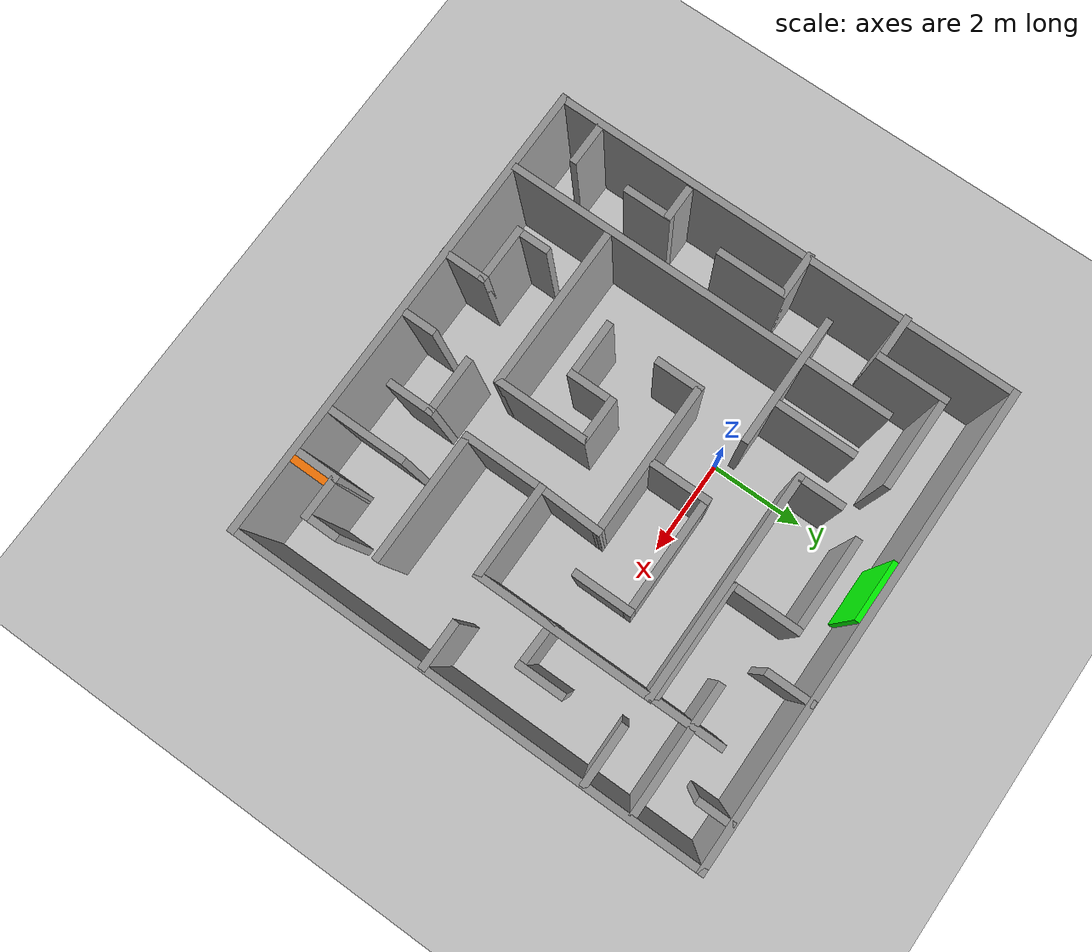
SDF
<sdf version="1.7">
 <world name="default">
  <light name="sun" type="directional">
   <pose>0 0 10 0 -0 0</pose>
   <diffuse>0.8 0.8 0.8 1</diffuse>
   <specular>0.2 0.2 0.2 1</specular>
   <attenuation>
    <range>1000</range>
    <constant>0.9</constant>
    <linear>0.01</linear>
    <quadratic>0.001</quadratic>
   </attenuation>
   <direction>-0.5 0.1 -0.9</direction>
   <spot><inner_angle>0</inner_angle><outer_angle>0</outer_angle><falloff>0</falloff></spot>
  </light>
  <model name="ground_plane">
   <static>1</static>
   <link name="link">
    <collision name="collision">
     <geometry><plane><normal>0 0 1</normal><size>100 100</size></plane></geometry>
     <surface><friction><ode><mu>100</mu><mu2>50</mu2></ode></friction></surface>
    </collision>
    <visual name="visual">
     <cast_shadows>0</cast_shadows>
     <geometry><plane><normal>0 0 1</normal><size>100 100</size></plane></geometry>
     <material>
      <script><uri>file://media/materials/scripts/gazebo.material</uri><name>Gazebo/Grey</name></script>
     </material>
    </visual>
   </link>
  </model>
  <gravity>0 0 -9.8</gravity>
  <magnetic_field>6e-06 2.3e-05 -4.2e-05</magnetic_field>
  <atmosphere type="adiabatic"/>
  <physics type="ode">
   <max_step_size>0.001</max_step_size>
   <real_time_factor>1</real_time_factor>
   <real_time_update_rate>1000</real_time_update_rate>
  </physics>
  <scene><ambient>0.4 0.4 0.4 1</ambient><background>0.7 0.7 0.7 1</background><shadows>1</shadows></scene>
  <audio><device>default</device></audio>
  <spherical_coordinates>
   <surface_model>EARTH_WGS84</surface_model>
   <latitude_deg>0</latitude_deg>
   <longitude_deg>0</longitude_deg>
   <elevation>0</elevation>
   <heading_deg>0</heading_deg>
  </spherical_coordinates>
  <model name="maze_world">
   <pose>1.22308 -1.21291 0 0 -0 0</pose>
   <link name="Wall_1">
    <collision name="Wall_1_Collision">
     <geometry><box><size>10.0122 0.15 2.5</size></box></geometry>
     <pose>0 0 1.25 0 -0 0</pose>
    </collision>
    <visual name="Wall_1_Visual">
     <pose>0 0 1.25 0 -0 0</pose>
     <geometry><box><size>10.0122 0.15 2.5</size></box></geometry>
     <material>
      <script><uri>file://media/materials/scripts/gazebo.material</uri><name>Gazebo/Grey</name></script>
      <ambient>1 1 1 1</ambient>
     </material>
     <meta><layer>0</layer></meta>
    </visual>
    <pose>0.01724 -4.9223 0 0 -0 -0.000387</pose>
   </link>
   <link name="Wall_103">
    <collision name="Wall_103_Collision">
     <geometry><box><size>1 0.15 2.5</size></box></geometry>
     <pose>0 0 1.25 0 -0 0</pose>
    </collision>
    <visual name="Wall_103_Visual">
     <pose>0 0 1.25 0 -0 0</pose>
     <geometry><box><size>1 0.15 2.5</size></box></geometry>
     <material>
      <script><uri>file://media/materials/scripts/gazebo.material</uri><name>Gazebo/Grey</name></script>
      <ambient>1 1 1 1</ambient>
     </material>
     <meta><layer>0</layer></meta>
    </visual>
    <pose>3.21319 -4.45143 0 0 -0 1.5708</pose>
   </link>
   <link name="Wall_107">
    <collision name="Wall_107_Collision">
     <geometry><box><size>1 0.15 2.5</size></box></geometry>
     <pose>0 0 1.25 0 -0 0</pose>
    </collision>
    <visual name="Wall_107_Visual">
     <pose>0 0 1.25 0 -0 0</pose>
     <geometry><box><size>1 0.15 2.5</size></box></geometry>
     <material>
      <script><uri>file://media/materials/scripts/gazebo.material</uri><name>Gazebo/Grey</name></script>
      <ambient>1 1 1 1</ambient>
     </material>
     <meta><layer>0</layer></meta>
    </visual>
    <pose>1.29798 -3.80822 0 0 -0 -1.5708</pose>
   </link>
   <link name="Wall_11">
    <collision name="Wall_11_Collision">
     <geometry><box><size>1 0.15 2.5</size></box></geometry>
     <pose>0 0 1.25 0 -0 0</pose>
    </collision>
    <visual name="Wall_11_Visual">
     <pose>0 0 1.25 0 -0 0</pose>
     <geometry><box><size>1 0.15 2.5</size></box></geometry>
     <material>
      <script><uri>file://media/materials/scripts/gazebo.material</uri><name>Gazebo/Grey</name></script>
      <ambient>1 1 1 1</ambient>
     </material>
     <meta><layer>0</layer></meta>
    </visual>
    <pose>-4.51672 0.535987 0 0 -0 0</pose>
   </link>
   <link name="Wall_118">
    <collision name="Wall_118_Collision">
     <geometry><box><size>0.75 0.15 2.5</size></box></geometry>
     <pose>0 0 1.25 0 -0 0</pose>
    </collision>
    <visual name="Wall_118_Visual">
     <pose>0 0 1.25 0 -0 0</pose>
     <geometry><box><size>0.75 0.15 2.5</size></box></geometry>
     <material>
      <script><uri>file://media/materials/scripts/gazebo.material</uri><name>Gazebo/Grey</name></script>
      <ambient>0.996078 0.47451 0.0196078 1</ambient>
     </material>
     <meta><layer>0</layer></meta>
    </visual>
    <pose>3.36163 -4.47477 0 0 -0 1.5708</pose>
   </link>
   <link name="Wall_12">
    <collision name="Wall_12_Collision">
     <geometry><box><size>1.5 0.15 2.5</size></box></geometry>
     <pose>0 0 1.25 0 -0 0</pose>
    </collision>
    <visual name="Wall_12_Visual">
     <pose>0 0 1.25 0 -0 0</pose>
     <geometry><box><size>1.5 0.15 2.5</size></box></geometry>
     <material>
      <script><uri>file://media/materials/scripts/gazebo.material</uri><name>Gazebo/Grey</name></script>
      <ambient>1 1 1 1</ambient>
     </material>
     <meta><layer>0</layer></meta>
    </visual>
    <pose>-4.09172 -0.139013 0 0 -0 -1.5708</pose>
   </link>
   <link name="Wall_14">
    <collision name="Wall_14_Collision">
     <geometry><box><size>0.75 0.15 2.5</size></box></geometry>
     <pose>0 0 1.25 0 -0 0</pose>
    </collision>
    <visual name="Wall_14_Visual">
     <pose>0 0 1.25 0 -0 0</pose>
     <geometry><box><size>0.75 0.15 2.5</size></box></geometry>
     <material>
      <script><uri>file://media/materials/scripts/gazebo.material</uri><name>Gazebo/Grey</name></script>
      <ambient>1 1 1 1</ambient>
     </material>
     <meta><layer>0</layer></meta>
    </visual>
    <pose>-4.43353 -1.99861 0 0 -0 0</pose>
   </link>
   <link name="Wall_15">
    <collision name="Wall_15_Collision">
     <geometry><box><size>1.04614 0.15 2.5</size></box></geometry>
     <pose>0 0 1.25 0 -0 0</pose>
    </collision>
    <visual name="Wall_15_Visual">
     <pose>0 0 1.25 0 -0 0</pose>
     <geometry><box><size>1.04614 0.15 2.5</size></box></geometry>
     <material>
      <script><uri>file://media/materials/scripts/gazebo.material</uri><name>Gazebo/Grey</name></script>
      <ambient>1 1 1 1</ambient>
     </material>
     <meta><layer>0</layer></meta>
    </visual>
    <pose>-4.11832 -2.44642 0 0 -0 -1.5708</pose>
   </link>
   <link name="Wall_17">
    <collision name="Wall_17_Collision">
     <geometry><box><size>1 0.15 2.5</size></box></geometry>
     <pose>0 0 1.25 0 -0 0</pose>
    </collision>
    <visual name="Wall_17_Visual">
     <pose>0 0 1.25 0 -0 0</pose>
     <geometry><box><size>1 0.15 2.5</size></box></geometry>
     <material>
      <script><uri>file://media/materials/scripts/gazebo.material</uri><name>Gazebo/Grey</name></script>
      <ambient>1 1 1 1</ambient>
     </material>
     <meta><layer>0</layer></meta>
    </visual>
    <pose>-4.46352 -4.03925 0 0 -0 0</pose>
   </link>
   <link name="Wall_19">
    <collision name="Wall_19_Collision">
     <geometry><box><size>8.25 0.15 2.5</size></box></geometry>
     <pose>0 0 1.25 0 -0 0</pose>
    </collision>
    <visual name="Wall_19_Visual">
     <pose>0 0 1.25 0 -0 0</pose>
     <geometry><box><size>8.25 0.15 2.5</size></box></geometry>
     <material>
      <script><uri>file://media/materials/scripts/gazebo.material</uri><name>Gazebo/Grey</name></script>
      <ambient>1 1 1 1</ambient>
     </material>
     <meta><layer>0</layer></meta>
    </visual>
    <pose>-3.28602 -0.772885 0 0 -0 -1.5708</pose>
   </link>
   <link name="Wall_2">
    <collision name="Wall_2_Collision">
     <geometry><box><size>10.0026 0.15 2.5</size></box></geometry>
     <pose>0 0 1.25 0 -0 0</pose>
    </collision>
    <visual name="Wall_2_Visual">
     <pose>0 0 1.25 0 -0 0</pose>
     <geometry><box><size>10.0026 0.15 2.5</size></box></geometry>
     <material>
      <script><uri>file://media/materials/scripts/gazebo.material</uri><name>Gazebo/Grey</name></script>
      <ambient>1 1 1 1</ambient>
     </material>
     <meta><layer>0</layer></meta>
    </visual>
    <pose>4.94835 0.002111 0 0 -0 1.5708</pose>
   </link>
   <link name="Wall_22">
    <collision name="Wall_22_Collision">
     <geometry><box><size>2.75 0.15 2.5</size></box></geometry>
     <pose>0 0 1.25 0 -0 0</pose>
    </collision>
    <visual name="Wall_22_Visual">
     <pose>0 0 1.25 0 -0 0</pose>
     <geometry><box><size>2.75 0.15 2.5</size></box></geometry>
     <material>
      <script><uri>file://media/materials/scripts/gazebo.material</uri><name>Gazebo/Grey</name></script>
      <ambient>1 1 1 1</ambient>
     </material>
     <meta><layer>0</layer></meta>
    </visual>
    <pose>-2.79002 1.4874 0 0 -0 0</pose>
   </link>
   <link name="Wall_24">
    <collision name="Wall_24_Collision">
     <geometry><box><size>1.75 0.15 2.5</size></box></geometry>
     <pose>0 0 1.25 0 -0 0</pose>
    </collision>
    <visual name="Wall_24_Visual">
     <pose>0 0 1.25 0 -0 0</pose>
     <geometry><box><size>1.75 0.15 2.5</size></box></geometry>
     <material>
      <script><uri>file://media/materials/scripts/gazebo.material</uri><name>Gazebo/Grey</name></script>
      <ambient>1 1 1 1</ambient>
     </material>
     <meta><layer>0</layer></meta>
    </visual>
    <pose>-2.34014 2.34774 0 0 -0 1.5708</pose>
   </link>
   <link name="Wall_26">
    <collision name="Wall_26_Collision">
     <geometry><box><size>2 0.15 2.5</size></box></geometry>
     <pose>0 0 1.25 0 -0 0</pose>
    </collision>
    <visual name="Wall_26_Visual">
     <pose>0 0 1.25 0 -0 0</pose>
     <geometry><box><size>2 0.15 2.5</size></box></geometry>
     <material>
      <script><uri>file://media/materials/scripts/gazebo.material</uri><name>Gazebo/Grey</name></script>
      <ambient>1 1 1 1</ambient>
     </material>
     <meta><layer>0</layer></meta>
    </visual>
    <pose>-0.147988 4.06194 0 0 -0 0</pose>
   </link>
   <link name="Wall_27">
    <collision name="Wall_27_Collision">
     <geometry><box><size>1.5 0.15 2.5</size></box></geometry>
     <pose>0 0 1.25 0 -0 0</pose>
    </collision>
    <visual name="Wall_27_Visual">
     <pose>0 0 1.25 0 -0 0</pose>
     <geometry><box><size>1.5 0.15 2.5</size></box></geometry>
     <material>
      <script><uri>file://media/materials/scripts/gazebo.material</uri><name>Gazebo/Grey</name></script>
      <ambient>1 1 1 1</ambient>
     </material>
     <meta><layer>0</layer></meta>
    </visual>
    <pose>0.777012 3.38693 0 0 -0 -1.5708</pose>
   </link>
   <link name="Wall_28">
    <collision name="Wall_28_Collision">
     <geometry><box><size>2.5 0.15 2.5</size></box></geometry>
     <pose>0 0 1.25 0 -0 0</pose>
    </collision>
    <visual name="Wall_28_Visual">
     <pose>0 0 1.25 0 -0 0</pose>
     <geometry><box><size>2.5 0.15 2.5</size></box></geometry>
     <material>
      <script><uri>file://media/materials/scripts/gazebo.material</uri><name>Gazebo/Grey</name></script>
      <ambient>1 1 1 1</ambient>
     </material>
     <meta><layer>0</layer></meta>
    </visual>
    <pose>1.95201 2.71194 0 0 -0 0</pose>
   </link>
   <link name="Wall_29">
    <collision name="Wall_29_Collision">
     <geometry><box><size>1.5 0.15 2.5</size></box></geometry>
     <pose>0 0 1.25 0 -0 0</pose>
    </collision>
    <visual name="Wall_29_Visual">
     <pose>0 0 1.25 0 -0 0</pose>
     <geometry><box><size>1.5 0.15 2.5</size></box></geometry>
     <material>
      <script><uri>file://media/materials/scripts/gazebo.material</uri><name>Gazebo/Grey</name></script>
      <ambient>1 1 1 1</ambient>
     </material>
     <meta><layer>0</layer></meta>
    </visual>
    <pose>3.12701 3.38693 0 0 -0 1.5708</pose>
   </link>
   <link name="Wall_3">
    <collision name="Wall_3_Collision">
     <geometry><box><size>10 0.15 2.5</size></box></geometry>
     <pose>0 0 1.25 0 -0 0</pose>
    </collision>
    <visual name="Wall_3_Visual">
     <pose>0 0 1.25 0 -0 0</pose>
     <geometry><box><size>10 0.15 2.5</size></box></geometry>
     <material>
      <script><uri>file://media/materials/scripts/gazebo.material</uri><name>Gazebo/Grey</name></script>
      <ambient>1 1 1 1</ambient>
     </material>
     <meta><layer>0</layer></meta>
    </visual>
    <pose>0.02335 4.92842 0 0 -0 3.14159</pose>
   </link>
   <link name="Wall_31">
    <collision name="Wall_31_Collision">
     <geometry><box><size>1 0.15 2.5</size></box></geometry>
     <pose>0 0 1.25 0 -0 0</pose>
    </collision>
    <visual name="Wall_31_Visual">
     <pose>0 0 1.25 0 -0 0</pose>
     <geometry><box><size>1 0.15 2.5</size></box></geometry>
     <material>
      <script><uri>file://media/materials/scripts/gazebo.material</uri><name>Gazebo/Grey</name></script>
      <ambient>1 1 1 1</ambient>
     </material>
     <meta><layer>0</layer></meta>
    </visual>
    <pose>-1.45515 3.05364 0 0 -0 -1.5708</pose>
   </link>
   <link name="Wall_35">
    <collision name="Wall_35_Collision">
     <geometry><box><size>4.75 0.15 2.5</size></box></geometry>
     <pose>0 0 1.25 0 -0 0</pose>
    </collision>
    <visual name="Wall_35_Visual">
     <pose>0 0 1.25 0 -0 0</pose>
     <geometry><box><size>4.75 0.15 2.5</size></box></geometry>
     <material>
      <script><uri>file://media/materials/scripts/gazebo.material</uri><name>Gazebo/Grey</name></script>
      <ambient>1 1 1 1</ambient>
     </material>
     <meta><layer>0</layer></meta>
    </visual>
    <pose>0.844854 2.62864 0 0 -0 0</pose>
   </link>
   <link name="Wall_36">
    <collision name="Wall_36_Collision">
     <geometry><box><size>3.75 0.15 2.5</size></box></geometry>
     <pose>0 0 1.25 0 -0 0</pose>
    </collision>
    <visual name="Wall_36_Visual">
     <pose>0 0 1.25 0 -0 0</pose>
     <geometry><box><size>3.75 0.15 2.5</size></box></geometry>
     <material>
      <script><uri>file://media/materials/scripts/gazebo.material</uri><name>Gazebo/Grey</name></script>
      <ambient>1 1 1 1</ambient>
     </material>
     <meta><layer>0</layer></meta>
    </visual>
    <pose>3.14485 0.828642 0 0 -0 -1.5708</pose>
   </link>
   <link name="Wall_37">
    <collision name="Wall_37_Collision">
     <geometry><box><size>2 0.15 2.5</size></box></geometry>
     <pose>0 0 1.25 0 -0 0</pose>
    </collision>
    <visual name="Wall_37_Visual">
     <pose>0 0 1.25 0 -0 0</pose>
     <geometry><box><size>2 0.15 2.5</size></box></geometry>
     <material>
      <script><uri>file://media/materials/scripts/gazebo.material</uri><name>Gazebo/Grey</name></script>
      <ambient>1 1 1 1</ambient>
     </material>
     <meta><layer>0</layer></meta>
    </visual>
    <pose>2.21985 -0.971358 0 0 -0 3.14159</pose>
   </link>
   <link name="Wall_38">
    <collision name="Wall_38_Collision">
     <geometry><box><size>1.75 0.15 2.5</size></box></geometry>
     <pose>0 0 1.25 0 -0 0</pose>
    </collision>
    <visual name="Wall_38_Visual">
     <pose>0 0 1.25 0 -0 0</pose>
     <geometry><box><size>1.75 0.15 2.5</size></box></geometry>
     <material>
      <script><uri>file://media/materials/scripts/gazebo.material</uri><name>Gazebo/Grey</name></script>
      <ambient>1 1 1 1</ambient>
     </material>
     <meta><layer>0</layer></meta>
    </visual>
    <pose>1.29485 -1.77136 0 0 -0 -1.5708</pose>
   </link>
   <link name="Wall_39">
    <collision name="Wall_39_Collision">
     <geometry><box><size>2.75 0.15 2.5</size></box></geometry>
     <pose>0 0 1.25 0 -0 0</pose>
    </collision>
    <visual name="Wall_39_Visual">
     <pose>0 0 1.25 0 -0 0</pose>
     <geometry><box><size>2.75 0.15 2.5</size></box></geometry>
     <material>
      <script><uri>file://media/materials/scripts/gazebo.material</uri><name>Gazebo/Grey</name></script>
      <ambient>1 1 1 1</ambient>
     </material>
     <meta><layer>0</layer></meta>
    </visual>
    <pose>2.59485 -2.57136 0 0 -0 0</pose>
   </link>
   <link name="Wall_4">
    <collision name="Wall_4_Collision">
     <geometry><box><size>10 0.15 2.5</size></box></geometry>
     <pose>0 0 1.25 0 -0 0</pose>
    </collision>
    <visual name="Wall_4_Visual">
     <pose>0 0 1.25 0 -0 0</pose>
     <geometry><box><size>10 0.15 2.5</size></box></geometry>
     <material>
      <script><uri>file://media/materials/scripts/gazebo.material</uri><name>Gazebo/Grey</name></script>
      <ambient>1 1 1 1</ambient>
     </material>
     <meta><layer>0</layer></meta>
    </visual>
    <pose>-4.90165 0.003422 0 0 -0 -1.5708</pose>
   </link>
   <link name="Wall_41">
    <collision name="Wall_41_Collision">
     <geometry><box><size>1 0.15 2.5</size></box></geometry>
     <pose>0 0 1.25 0 -0 0</pose>
    </collision>
    <visual name="Wall_41_Visual">
     <pose>0 0 1.25 0 -0 0</pose>
     <geometry><box><size>1 0.15 2.5</size></box></geometry>
     <material>
      <script><uri>file://media/materials/scripts/gazebo.material</uri><name>Gazebo/Grey</name></script>
      <ambient>1 1 1 1</ambient>
     </material>
     <meta><layer>0</layer></meta>
    </visual>
    <pose>1.65968 4.49104 0 0 -0 -1.5708</pose>
   </link>
   <link name="Wall_43">
    <collision name="Wall_43_Collision">
     <geometry><box><size>2.75 0.15 2.5</size></box></geometry>
     <pose>0 0 1.25 0 -0 0</pose>
    </collision>
    <visual name="Wall_43_Visual">
     <pose>0 0 1.25 0 -0 0</pose>
     <geometry><box><size>2.75 0.15 2.5</size></box></geometry>
     <material>
      <script><uri>file://media/materials/scripts/gazebo.material</uri><name>Gazebo/Grey</name></script>
      <ambient>1 1 1 1</ambient>
     </material>
     <meta><layer>0</layer></meta>
    </visual>
    <pose>3.62098 3.50043 0 0 -0 0</pose>
   </link>
   <link name="Wall_45">
    <collision name="Wall_45_Collision">
     <geometry><box><size>0.75 0.15 2.5</size></box></geometry>
     <pose>0 0 1.25 0 -0 0</pose>
    </collision>
    <visual name="Wall_45_Visual">
     <pose>0 0 1.25 0 -0 0</pose>
     <geometry><box><size>0.75 0.15 2.5</size></box></geometry>
     <material>
      <script><uri>file://media/materials/scripts/gazebo.material</uri><name>Gazebo/Grey</name></script>
      <ambient>1 1 1 1</ambient>
     </material>
     <meta><layer>0</layer></meta>
    </visual>
    <pose>4.06452 4.59724 0 0 -0 -1.5708</pose>
   </link>
   <link name="Wall_47">
    <collision name="Wall_47_Collision">
     <geometry><box><size>1 0.15 2.5</size></box></geometry>
     <pose>0 0 1.25 0 -0 0</pose>
    </collision>
    <visual name="Wall_47_Visual">
     <pose>0 0 1.25 0 -0 0</pose>
     <geometry><box><size>1 0.15 2.5</size></box></geometry>
     <material>
      <script><uri>file://media/materials/scripts/gazebo.material</uri><name>Gazebo/Grey</name></script>
      <ambient>1 1 1 1</ambient>
     </material>
     <meta><layer>0</layer></meta>
    </visual>
    <pose>-1.76105 -0.142197 0 0 -0 1.5708</pose>
   </link>
   <link name="Wall_48">
    <collision name="Wall_48_Collision">
     <geometry><box><size>3.25 0.15 2.5</size></box></geometry>
     <pose>0 0 1.25 0 -0 0</pose>
    </collision>
    <visual name="Wall_48_Visual">
     <pose>0 0 1.25 0 -0 0</pose>
     <geometry><box><size>3.25 0.15 2.5</size></box></geometry>
     <material>
      <script><uri>file://media/materials/scripts/gazebo.material</uri><name>Gazebo/Grey</name></script>
      <ambient>1 1 1 1</ambient>
     </material>
     <meta><layer>0</layer></meta>
    </visual>
    <pose>-0.211047 0.282803 0 0 -0 0</pose>
   </link>
   <link name="Wall_49">
    <collision name="Wall_49_Collision">
     <geometry><box><size>1.40494 0.15 2.5</size></box></geometry>
     <pose>0 0 1.25 0 -0 0</pose>
    </collision>
    <visual name="Wall_49_Visual">
     <pose>0 0 1.25 0 -0 0</pose>
     <geometry><box><size>1.40494 0.15 2.5</size></box></geometry>
     <material>
      <script><uri>file://media/materials/scripts/gazebo.material</uri><name>Gazebo/Grey</name></script>
      <ambient>1 1 1 1</ambient>
     </material>
     <meta><layer>0</layer></meta>
    </visual>
    <pose>1.3169 -0.344277 0 0 -0 -1.60594</pose>
   </link>
   <link name="Wall_53">
    <collision name="Wall_53_Collision">
     <geometry><box><size>1.25 0.15 2.5</size></box></geometry>
     <pose>0 0 1.25 0 -0 0</pose>
    </collision>
    <visual name="Wall_53_Visual">
     <pose>0 0 1.25 0 -0 0</pose>
     <geometry><box><size>1.25 0.15 2.5</size></box></geometry>
     <material>
      <script><uri>file://media/materials/scripts/gazebo.material</uri><name>Gazebo/Grey</name></script>
      <ambient>1 1 1 1</ambient>
     </material>
     <meta><layer>0</layer></meta>
    </visual>
    <pose>-1.23765 -1.71101 0 0 -0 0</pose>
   </link>
   <link name="Wall_54">
    <collision name="Wall_54_Collision">
     <geometry><box><size>1 0.15 2.5</size></box></geometry>
     <pose>0 0 1.25 0 -0 0</pose>
    </collision>
    <visual name="Wall_54_Visual">
     <pose>0 0 1.25 0 -0 0</pose>
     <geometry><box><size>1 0.15 2.5</size></box></geometry>
     <material>
      <script><uri>file://media/materials/scripts/gazebo.material</uri><name>Gazebo/Grey</name></script>
      <ambient>1 1 1 1</ambient>
     </material>
     <meta><layer>0</layer></meta>
    </visual>
    <pose>-0.687647 -1.28601 0 0 -0 1.5708</pose>
   </link>
   <link name="Wall_55">
    <collision name="Wall_55_Collision">
     <geometry><box><size>1 0.15 2.5</size></box></geometry>
     <pose>0 0 1.25 0 -0 0</pose>
    </collision>
    <visual name="Wall_55_Visual">
     <pose>0 0 1.25 0 -0 0</pose>
     <geometry><box><size>1 0.15 2.5</size></box></geometry>
     <material>
      <script><uri>file://media/materials/scripts/gazebo.material</uri><name>Gazebo/Grey</name></script>
      <ambient>1 1 1 1</ambient>
     </material>
     <meta><layer>0</layer></meta>
    </visual>
    <pose>-0.262647 -0.861005 0 0 -0 0</pose>
   </link>
   <link name="Wall_56">
    <collision name="Wall_56_Collision">
     <geometry><box><size>2 0.15 2.5</size></box></geometry>
     <pose>0 0 1.25 0 -0 0</pose>
    </collision>
    <visual name="Wall_56_Visual">
     <pose>0 0 1.25 0 -0 0</pose>
     <geometry><box><size>2 0.15 2.5</size></box></geometry>
     <material>
      <script><uri>file://media/materials/scripts/gazebo.material</uri><name>Gazebo/Grey</name></script>
      <ambient>1 1 1 1</ambient>
     </material>
     <meta><layer>0</layer></meta>
    </visual>
    <pose>0.162353 -1.78601 0 0 -0 -1.5708</pose>
   </link>
   <link name="Wall_57">
    <collision name="Wall_57_Collision">
     <geometry><box><size>3.5 0.15 2.5</size></box></geometry>
     <pose>0 0 1.25 0 -0 0</pose>
    </collision>
    <visual name="Wall_57_Visual">
     <pose>0 0 1.25 0 -0 0</pose>
     <geometry><box><size>3.5 0.15 2.5</size></box></geometry>
     <material>
      <script><uri>file://media/materials/scripts/gazebo.material</uri><name>Gazebo/Grey</name></script>
      <ambient>1 1 1 1</ambient>
     </material>
     <meta><layer>0</layer></meta>
    </visual>
    <pose>-1.51265 -2.71101 0 0 -0 3.14159</pose>
   </link>
   <link name="Wall_59">
    <collision name="Wall_59_Collision">
     <geometry><box><size>1.25 0.15 2.5</size></box></geometry>
     <pose>0 0 1.25 0 -0 0</pose>
    </collision>
    <visual name="Wall_59_Visual">
     <pose>0 0 1.25 0 -0 0</pose>
     <geometry><box><size>1.25 0.15 2.5</size></box></geometry>
     <material>
      <script><uri>file://media/materials/scripts/gazebo.material</uri><name>Gazebo/Grey</name></script>
      <ambient>1 1 1 1</ambient>
     </material>
     <meta><layer>0</layer></meta>
    </visual>
    <pose>-1.76965 -4.07842 0 0 -0 0</pose>
   </link>
   <link name="Wall_62">
    <collision name="Wall_62_Collision">
     <geometry><box><size>1 0.15 2.5</size></box></geometry>
     <pose>0 0 1.25 0 -0 0</pose>
    </collision>
    <visual name="Wall_62_Visual">
     <pose>0 0 1.25 0 -0 0</pose>
     <geometry><box><size>1 0.15 2.5</size></box></geometry>
     <material>
      <script><uri>file://media/materials/scripts/gazebo.material</uri><name>Gazebo/Grey</name></script>
      <ambient>1 1 1 1</ambient>
     </material>
     <meta><layer>0</layer></meta>
    </visual>
    <pose>-1.21965 -4.50342 0 0 -0 -1.5708</pose>
   </link>
   <link name="Wall_64">
    <collision name="Wall_64_Collision">
     <geometry><box><size>1.25 0.15 2.5</size></box></geometry>
     <pose>0 0 1.25 0 -0 0</pose>
    </collision>
    <visual name="Wall_64_Visual">
     <pose>0 0 1.25 0 -0 0</pose>
     <geometry><box><size>1.25 0.15 2.5</size></box></geometry>
     <material>
      <script><uri>file://media/materials/scripts/gazebo.material</uri><name>Gazebo/Grey</name></script>
      <ambient>1 1 1 1</ambient>
     </material>
     <meta><layer>0</layer></meta>
    </visual>
    <pose>-0.191635 0.967011 0 0 -0 1.5708</pose>
   </link>
   <link name="Wall_65">
    <collision name="Wall_65_Collision">
     <geometry><box><size>2.5 0.15 2.5</size></box></geometry>
     <pose>0 0 1.25 0 -0 0</pose>
    </collision>
    <visual name="Wall_65_Visual">
     <pose>0 0 1.25 0 -0 0</pose>
     <geometry><box><size>2.5 0.15 2.5</size></box></geometry>
     <material>
      <script><uri>file://media/materials/scripts/gazebo.material</uri><name>Gazebo/Grey</name></script>
      <ambient>1 1 1 1</ambient>
     </material>
     <meta><layer>0</layer></meta>
    </visual>
    <pose>0.983365 1.51701 0 0 -0 0</pose>
   </link>
   <link name="Wall_66">
    <collision name="Wall_66_Collision">
     <geometry><box><size>1.25 0.15 2.5</size></box></geometry>
     <pose>0 0 1.25 0 -0 0</pose>
    </collision>
    <visual name="Wall_66_Visual">
     <pose>0 0 1.25 0 -0 0</pose>
     <geometry><box><size>1.25 0.15 2.5</size></box></geometry>
     <material>
      <script><uri>file://media/materials/scripts/gazebo.material</uri><name>Gazebo/Grey</name></script>
      <ambient>1 1 1 1</ambient>
     </material>
     <meta><layer>0</layer></meta>
    </visual>
    <pose>2.15836 0.967011 0 0 -0 -1.5708</pose>
   </link>
   <link name="Wall_68">
    <collision name="Wall_68_Collision">
     <geometry><box><size>1 0.15 2.5</size></box></geometry>
     <pose>0 0 1.25 0 -0 0</pose>
    </collision>
    <visual name="Wall_68_Visual">
     <pose>0 0 1.25 0 -0 0</pose>
     <geometry><box><size>1 0.15 2.5</size></box></geometry>
     <material>
      <script><uri>file://media/materials/scripts/gazebo.material</uri><name>Gazebo/Grey</name></script>
      <ambient>1 1 1 1</ambient>
     </material>
     <meta><layer>0</layer></meta>
    </visual>
    <pose>4.4894 -0.806599 0 0 -0 0</pose>
   </link>
   <link name="Wall_7">
    <collision name="Wall_7_Collision">
     <geometry><box><size>1 0.15 2.5</size></box></geometry>
     <pose>0 0 1.25 0 -0 0</pose>
    </collision>
    <visual name="Wall_7_Visual">
     <pose>0 0 1.25 0 -0 0</pose>
     <geometry><box><size>1 0.15 2.5</size></box></geometry>
     <material>
      <script><uri>file://media/materials/scripts/gazebo.material</uri><name>Gazebo/Grey</name></script>
      <ambient>1 1 1 1</ambient>
     </material>
     <meta><layer>0</layer></meta>
    </visual>
    <pose>-4.52338 2.61378 0 0 -0 0</pose>
   </link>
   <link name="Wall_70">
    <collision name="Wall_70_Collision">
     <geometry><box><size>0.988815 0.15 2.5</size></box></geometry>
     <pose>0 0 1.25 0 -0 0</pose>
    </collision>
    <visual name="Wall_70_Visual">
     <pose>0 0 1.25 0 -0 0</pose>
     <geometry><box><size>0.988815 0.15 2.5</size></box></geometry>
     <material>
      <script><uri>file://media/materials/scripts/gazebo.material</uri><name>Gazebo/Grey</name></script>
      <ambient>1 1 1 1</ambient>
     </material>
     <meta><layer>0</layer></meta>
    </visual>
    <pose>3.55264 0.538512 0 0 -0 -0.027423</pose>
   </link>
   <link name="Wall_71">
    <collision name="Wall_71_Collision">
     <geometry><box><size>1 0.15 2.5</size></box></geometry>
     <pose>0 0 1.25 0 -0 0</pose>
    </collision>
    <visual name="Wall_71_Visual">
     <pose>0 0 1.25 0 -0 0</pose>
     <geometry><box><size>1 0.15 2.5</size></box></geometry>
     <material>
      <script><uri>file://media/materials/scripts/gazebo.material</uri><name>Gazebo/Grey</name></script>
      <ambient>1 1 1 1</ambient>
     </material>
     <meta><layer>0</layer></meta>
    </visual>
    <pose>3.97189 0.952012 0 0 -0 1.5708</pose>
   </link>
   <link name="Wall_73">
    <collision name="Wall_73_Collision">
     <geometry><box><size>1.25 0.15 2.5</size></box></geometry>
     <pose>0 0 1.25 0 -0 0</pose>
    </collision>
    <visual name="Wall_73_Visual">
     <pose>0 0 1.25 0 -0 0</pose>
     <geometry><box><size>1.25 0.15 2.5</size></box></geometry>
     <material>
      <script><uri>file://media/materials/scripts/gazebo.material</uri><name>Gazebo/Grey</name></script>
      <ambient>1 1 1 1</ambient>
     </material>
     <meta><layer>0</layer></meta>
    </visual>
    <pose>4.3656 2.54503 0 0 -0 3.14159</pose>
   </link>
   <link name="Wall_77">
    <collision name="Wall_77_Collision">
     <geometry><box><size>0.75 0.15 2.5</size></box></geometry>
     <pose>0 0 1.25 0 -0 0</pose>
    </collision>
    <visual name="Wall_77_Visual">
     <pose>0 0 1.25 0 -0 0</pose>
     <geometry><box><size>0.75 0.15 2.5</size></box></geometry>
     <material>
      <script><uri>file://media/materials/scripts/gazebo.material</uri><name>Gazebo/Grey</name></script>
      <ambient>1 1 1 1</ambient>
     </material>
     <meta><layer>0</layer></meta>
    </visual>
    <pose>0.100967 -4.54862 0 0 -0 -1.5708</pose>
   </link>
   <link name="Wall_8">
    <collision name="Wall_8_Collision">
     <geometry><box><size>1.5 0.15 2.5</size></box></geometry>
     <pose>0 0 1.25 0 -0 0</pose>
    </collision>
    <visual name="Wall_8_Visual">
     <pose>0 0 1.25 0 -0 0</pose>
     <geometry><box><size>1.5 0.15 2.5</size></box></geometry>
     <material>
      <script><uri>file://media/materials/scripts/gazebo.material</uri><name>Gazebo/Grey</name></script>
      <ambient>1 1 1 1</ambient>
     </material>
     <meta><layer>0</layer></meta>
    </visual>
    <pose>-4.09838 3.28878 0 0 -0 1.5708</pose>
   </link>
   <link name="Wall_81">
    <collision name="Wall_81_Collision">
     <geometry><box><size>1 0.15 2.5</size></box></geometry>
     <pose>0 0 1.25 0 -0 0</pose>
    </collision>
    <visual name="Wall_81_Visual">
     <pose>0 0 1.25 0 -0 0</pose>
     <geometry><box><size>1 0.15 2.5</size></box></geometry>
     <material>
      <script><uri>file://media/materials/scripts/gazebo.material</uri><name>Gazebo/Grey</name></script>
      <ambient>1 1 1 1</ambient>
     </material>
     <meta><layer>0</layer></meta>
    </visual>
    <pose>3.21319 -4.45143 0 0 -0 1.5708</pose>
   </link>
   <link name="Wall_89">
    <collision name="Wall_89_Collision">
     <geometry><box><size>1.25 0.15 2.5</size></box></geometry>
     <pose>0 0 1.25 0 -0 0</pose>
    </collision>
    <visual name="Wall_89_Visual">
     <pose>0 0 1.25 0 -0 0</pose>
     <geometry><box><size>1.25 0.15 2.5</size></box></geometry>
     <material>
      <script><uri>file://media/materials/scripts/gazebo.material</uri><name>Gazebo/Grey</name></script>
      <ambient>0 1 0 1</ambient>
     </material>
     <meta><layer>0</layer></meta>
    </visual>
    <pose>-0.54999 4.82271 0 0 -0 0</pose>
   </link>
   <link name="Wall_9">
    <collision name="Wall_9_Collision">
     <geometry><box><size>2 0.15 2.5</size></box></geometry>
     <pose>0 0 1.25 0 -0 0</pose>
    </collision>
    <visual name="Wall_9_Visual">
     <pose>0 0 1.25 0 -0 0</pose>
     <geometry><box><size>2 0.15 2.5</size></box></geometry>
     <material>
      <script><uri>file://media/materials/scripts/gazebo.material</uri><name>Gazebo/Grey</name></script>
      <ambient>1 1 1 1</ambient>
     </material>
     <meta><layer>0</layer></meta>
    </visual>
    <pose>-3.17338 3.96378 0 0 -0 0</pose>
   </link>
   <link name="Wall_92">
    <collision name="Wall_92_Collision">
     <geometry><box><size>1.25 0.15 2.5</size></box></geometry>
     <pose>0 0 1.25 0 -0 0</pose>
    </collision>
    <visual name="Wall_92_Visual">
     <pose>0 0 1.25 0 -0 0</pose>
     <geometry><box><size>1.25 0.15 2.5</size></box></geometry>
     <material>
      <script><uri>file://media/materials/scripts/gazebo.material</uri><name>Gazebo/Grey</name></script>
      <ambient>1 1 1 1</ambient>
     </material>
     <meta><layer>0</layer></meta>
    </visual>
    <pose>0.747976 -3.38322 0 0 -0 3.14159</pose>
   </link>
   <link name="Wall_94">
    <collision name="Wall_94_Collision">
     <geometry><box><size>0.963232 0.15 2.5</size></box></geometry>
     <pose>0 0 1.25 0 -0 0</pose>
    </collision>
    <visual name="Wall_94_Visual">
     <pose>0 0 1.25 0 -0 0</pose>
     <geometry><box><size>0.963232 0.15 2.5</size></box></geometry>
     <material>
      <script><uri>file://media/materials/scripts/gazebo.material</uri><name>Gazebo/Grey</name></script>
      <ambient>1 1 1 1</ambient>
     </material>
     <meta><layer>0</layer></meta>
    </visual>
    <pose>3.61944 -4.02643 0 0 -0 0</pose>
   </link>
   <link name="Wall_95">
    <collision name="Wall_95_Collision">
     <geometry><box><size>0.75 0.15 2.5</size></box></geometry>
     <pose>0 0 1.25 0 -0 0</pose>
    </collision>
    <visual name="Wall_95_Visual">
     <pose>0 0 1.25 0 -0 0</pose>
     <geometry><box><size>0.75 0.15 2.5</size></box></geometry>
     <material>
      <script><uri>file://media/materials/scripts/gazebo.material</uri><name>Gazebo/Grey</name></script>
      <ambient>1 1 1 1</ambient>
     </material>
     <meta><layer>0</layer></meta>
    </visual>
    <pose>4.02569 -3.71493 0 0 -0 1.5708</pose>
   </link>
   <link name="Wall_97">
    <collision name="Wall_97_Collision">
     <geometry><box><size>1.75 0.15 2.5</size></box></geometry>
     <pose>0 0 1.25 0 -0 0</pose>
    </collision>
    <visual name="Wall_97_Visual">
     <pose>0 0 1.25 0 -0 0</pose>
     <geometry><box><size>1.75 0.15 2.5</size></box></geometry>
     <material>
      <script><uri>file://media/materials/scripts/gazebo.material</uri><name>Gazebo/Grey</name></script>
      <ambient>1 1 1 1</ambient>
     </material>
     <meta><layer>0</layer></meta>
    </visual>
    <pose>2.28645 -4.08782 0 0 -0 1.5708</pose>
   </link>
   <link name="Wall_99">
    <collision name="Wall_99_Collision">
     <geometry><box><size>0.75 0.15 2.5</size></box></geometry>
     <pose>0 0 1.25 0 -0 0</pose>
    </collision>
    <visual name="Wall_99_Visual">
     <pose>0 0 1.25 0 -0 0</pose>
     <geometry><box><size>0.75 0.15 2.5</size></box></geometry>
     <material>
      <script><uri>file://media/materials/scripts/gazebo.material</uri><name>Gazebo/Grey</name></script>
      <ambient>1 1 1 1</ambient>
     </material>
     <meta><layer>0</layer></meta>
    </visual>
    <pose>-2.31965 -3.77842 0 0 -0 1.5708</pose>
   </link>
   <static>1</static>
  </model>
 </world>
</sdf>
